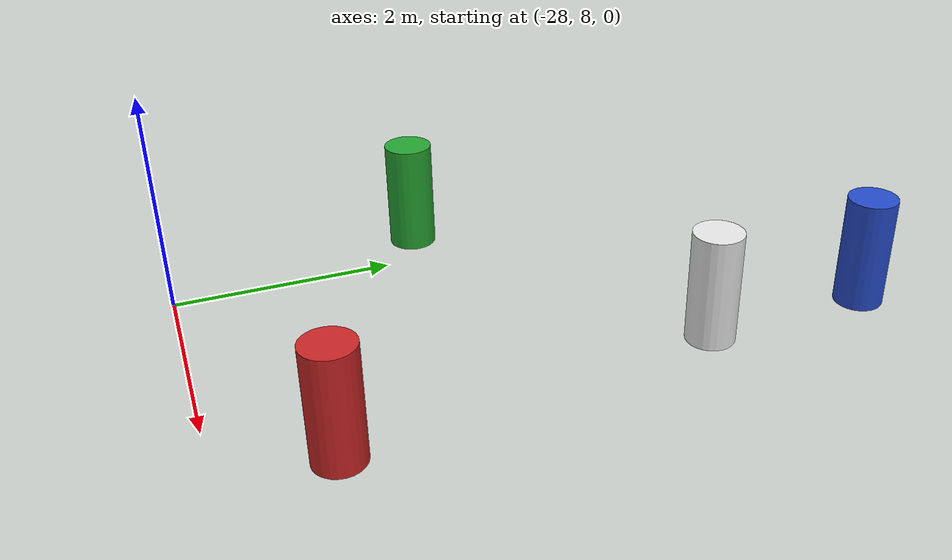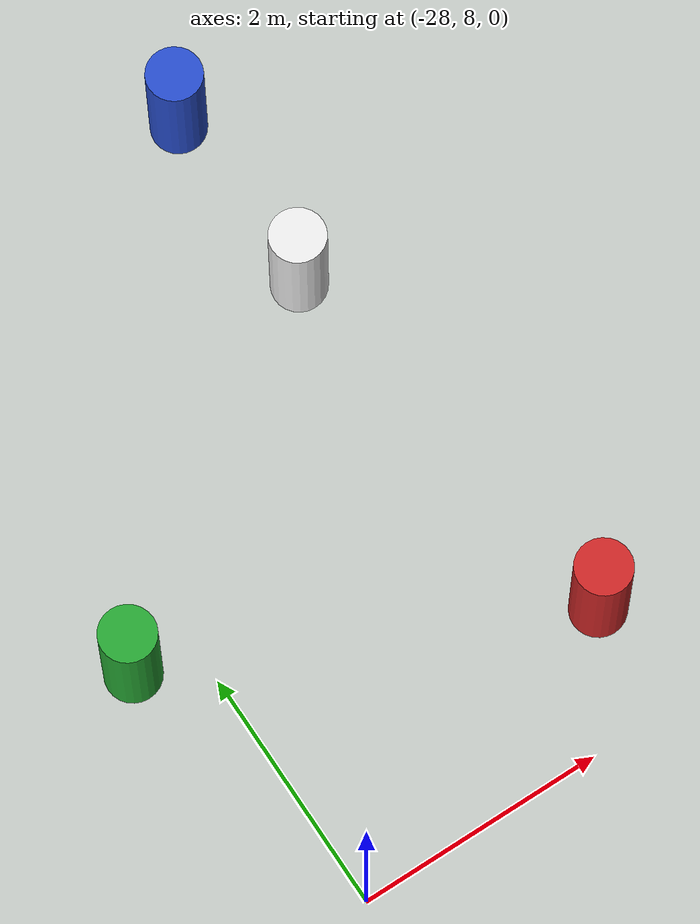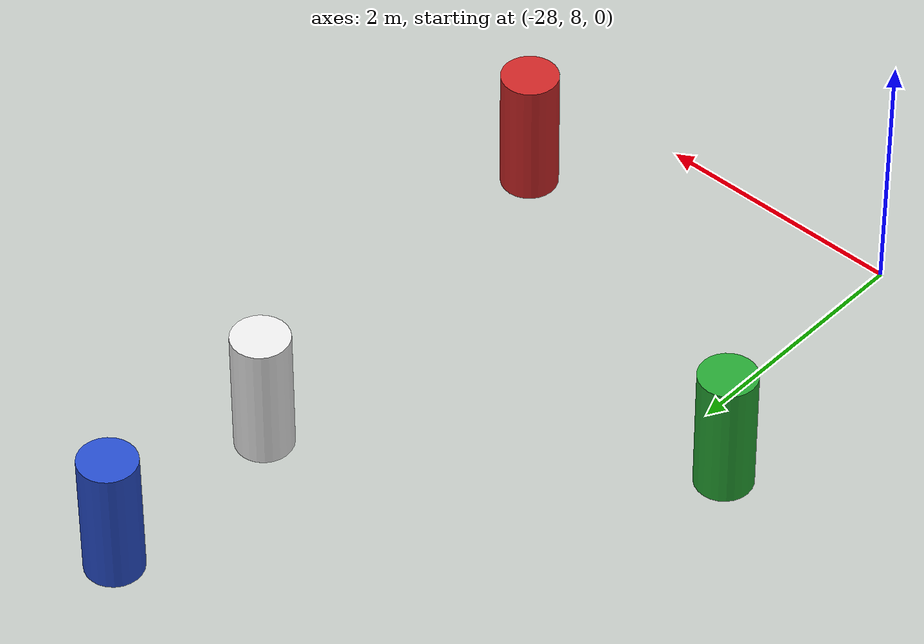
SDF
<sdf version="1.10">
 <world name="IGVC_AutoNav">
  <model name="barrel_10">
   <link name="link">
    <inertial>
     <mass>1</mass>
     <inertia>
      <ixx>0.14583299999999999</ixx>
      <ixy>0</ixy>
      <ixz>0</ixz>
      <iyy>0.14583299999999999</iyy>
      <iyz>0</iyz>
      <izz>0.125</izz>
     </inertia>
    </inertial>
    <visual name="visual">
     <geometry><cylinder><radius>0.222916</radius><length>1.0356700000000001</length></cylinder></geometry>
     <material>
      <script><name>Gazebo/Blue</name><uri>file://media/materials/scripts/gazebo.material</uri></script>
      <shader type="pixel"/>
     </material>
    </visual>
    <collision name="collision">
     <geometry><cylinder><radius>0.222916</radius><length>1.0356700000000001</length></cylinder></geometry>
     <surface>
      <friction>
       <ode><mu>1</mu><mu2>1</mu2><fdir1>0 0 0</fdir1><slip1>0</slip1><slip2>0</slip2></ode>
       <torsional>
        <coefficient>1</coefficient>
        <patch_radius>0</patch_radius>
        <surface_radius>0</surface_radius>
        <use_patch_radius>true</use_patch_radius>
        <ode><slip>0</slip></ode>
       </torsional>
      </friction>
      <bounce><restitution_coefficient>0</restitution_coefficient><threshold>1000000</threshold></bounce>
      <contact>
       <collide_without_contact>false</collide_without_contact>
       <collide_without_contact_bitmask>1</collide_without_contact_bitmask>
       <collide_bitmask>1</collide_bitmask>
       <ode>
        <soft_cfm>0</soft_cfm>
        <soft_erp>0.20000000000000001</soft_erp>
        <kp>10000000000000</kp>
        <kd>1</kd>
        <max_vel>0.01</max_vel>
        <min_depth>0</min_depth>
       </ode>
       <bullet>
        <split_impulse>true</split_impulse>
        <split_impulse_penetration_threshold>-0.01</split_impulse_penetration_threshold>
        <soft_cfm>0</soft_cfm>
        <soft_erp>0.20000000000000001</soft_erp>
        <kp>10000000000000</kp>
        <kd>1</kd>
       </bullet>
      </contact>
     </surface>
    </collision>
   </link>
   <static>false</static>
   <pose>-25.850784301757812 13.89840030670166 0.49065263426612393 8.4855848883399135e-17 -2.8281407959043097e-17 -2.4067787378642781e-17</pose>
  </model>
  <model name="barrel_14">
   <link name="link">
    <inertial>
     <mass>1</mass>
     <inertia>
      <ixx>0.14583299999999999</ixx>
      <ixy>0</ixy>
      <ixz>0</ixz>
      <iyy>0.14583299999999999</iyy>
      <iyz>0</iyz>
      <izz>0.125</izz>
     </inertia>
    </inertial>
    <visual name="visual">
     <geometry><cylinder><radius>0.222916</radius><length>1.0356700000000001</length></cylinder></geometry>
     <material>
      <script><name>Gazebo/Red</name><uri>file://media/materials/scripts/gazebo.material</uri></script>
      <shader type="pixel"/>
     </material>
    </visual>
    <collision name="collision">
     <geometry><cylinder><radius>0.222916</radius><length>1.0356700000000001</length></cylinder></geometry>
     <surface>
      <friction>
       <ode><mu>1</mu><mu2>1</mu2><fdir1>0 0 0</fdir1><slip1>0</slip1><slip2>0</slip2></ode>
       <torsional>
        <coefficient>1</coefficient>
        <patch_radius>0</patch_radius>
        <surface_radius>0</surface_radius>
        <use_patch_radius>true</use_patch_radius>
        <ode><slip>0</slip></ode>
       </torsional>
      </friction>
      <bounce><restitution_coefficient>0</restitution_coefficient><threshold>1000000</threshold></bounce>
      <contact>
       <collide_without_contact>false</collide_without_contact>
       <collide_without_contact_bitmask>1</collide_without_contact_bitmask>
       <collide_bitmask>1</collide_bitmask>
       <ode>
        <soft_cfm>0</soft_cfm>
        <soft_erp>0.20000000000000001</soft_erp>
        <kp>10000000000000</kp>
        <kd>1</kd>
        <max_vel>0.01</max_vel>
        <min_depth>0</min_depth>
       </ode>
       <bullet>
        <split_impulse>true</split_impulse>
        <split_impulse_penetration_threshold>-0.01</split_impulse_penetration_threshold>
        <soft_cfm>0</soft_cfm>
        <soft_erp>0.20000000000000001</soft_erp>
        <kp>10000000000000</kp>
        <kd>1</kd>
       </bullet>
      </contact>
     </surface>
    </collision>
   </link>
   <static>false</static>
   <pose>-25.332365036010742 8.9310302734375 0.49067056502060691 9.6709084724968985e-17 -7.6320325170465179e-17 5.422030205735455e-18</pose>
  </model>
  <model name="barrel_15">
   <link name="link">
    <inertial>
     <mass>1</mass>
     <inertia>
      <ixx>0.14583299999999999</ixx>
      <ixy>0</ixy>
      <ixz>0</ixz>
      <iyy>0.14583299999999999</iyy>
      <iyz>0</iyz>
      <izz>0.125</izz>
     </inertia>
    </inertial>
    <visual name="visual">
     <geometry><cylinder><radius>0.222916</radius><length>1.0356700000000001</length></cylinder></geometry>
     <material>
      <script><name>Gazebo/White</name><uri>file://media/materials/scripts/gazebo.material</uri></script>
      <shader type="pixel"/>
     </material>
    </visual>
    <collision name="collision">
     <geometry><cylinder><radius>0.222916</radius><length>1.0356700000000001</length></cylinder></geometry>
     <surface>
      <friction>
       <ode><mu>1</mu><mu2>1</mu2><fdir1>0 0 0</fdir1><slip1>0</slip1><slip2>0</slip2></ode>
       <torsional>
        <coefficient>1</coefficient>
        <patch_radius>0</patch_radius>
        <surface_radius>0</surface_radius>
        <use_patch_radius>true</use_patch_radius>
        <ode><slip>0</slip></ode>
       </torsional>
      </friction>
      <bounce><restitution_coefficient>0</restitution_coefficient><threshold>1000000</threshold></bounce>
      <contact>
       <collide_without_contact>false</collide_without_contact>
       <collide_without_contact_bitmask>1</collide_without_contact_bitmask>
       <collide_bitmask>1</collide_bitmask>
       <ode>
        <soft_cfm>0</soft_cfm>
        <soft_erp>0.20000000000000001</soft_erp>
        <kp>10000000000000</kp>
        <kd>1</kd>
        <max_vel>0.01</max_vel>
        <min_depth>0</min_depth>
       </ode>
       <bullet>
        <split_impulse>true</split_impulse>
        <split_impulse_penetration_threshold>-0.01</split_impulse_penetration_threshold>
        <soft_cfm>0</soft_cfm>
        <soft_erp>0.20000000000000001</soft_erp>
        <kp>10000000000000</kp>
        <kd>1</kd>
       </bullet>
      </contact>
     </surface>
    </collision>
   </link>
   <static>false</static>
   <pose>-25.783918380737305 12.307399749755859 0.49073859093797045 -8.4790698422489546e-17 -9.669244786946456e-17 -2.6998136379775421e-18</pose>
  </model>
  <model name="barrel_23">
   <link name="link">
    <inertial>
     <mass>1</mass>
     <inertia>
      <ixx>0.14583299999999999</ixx>
      <ixy>0</ixy>
      <ixz>0</ixz>
      <iyy>0.14583299999999999</iyy>
      <iyz>0</iyz>
      <izz>0.125</izz>
     </inertia>
    </inertial>
    <visual name="visual">
     <geometry><cylinder><radius>0.222916</radius><length>1.0356700000000001</length></cylinder></geometry>
     <material>
      <script><name>Gazebo/Green</name><uri>file://media/materials/scripts/gazebo.material</uri></script>
      <shader type="pixel"/>
     </material>
    </visual>
    <collision name="collision">
     <geometry><cylinder><radius>0.222916</radius><length>1.0356700000000001</length></cylinder></geometry>
     <surface>
      <friction>
       <ode><mu>1</mu><mu2>1</mu2><fdir1>0 0 0</fdir1><slip1>0</slip1><slip2>0</slip2></ode>
       <torsional>
        <coefficient>1</coefficient>
        <patch_radius>0</patch_radius>
        <surface_radius>0</surface_radius>
        <use_patch_radius>true</use_patch_radius>
        <ode><slip>0</slip></ode>
       </torsional>
      </friction>
      <bounce><restitution_coefficient>0</restitution_coefficient><threshold>1000000</threshold></bounce>
      <contact>
       <collide_without_contact>false</collide_without_contact>
       <collide_without_contact_bitmask>1</collide_without_contact_bitmask>
       <collide_bitmask>1</collide_bitmask>
       <ode>
        <soft_cfm>0</soft_cfm>
        <soft_erp>0.20000000000000001</soft_erp>
        <kp>10000000000000</kp>
        <kd>1</kd>
        <max_vel>0.01</max_vel>
        <min_depth>0</min_depth>
       </ode>
       <bullet>
        <split_impulse>true</split_impulse>
        <split_impulse_penetration_threshold>-0.01</split_impulse_penetration_threshold>
        <soft_cfm>0</soft_cfm>
        <soft_erp>0.20000000000000001</soft_erp>
        <kp>10000000000000</kp>
        <kd>1</kd>
       </bullet>
      </contact>
     </surface>
    </collision>
   </link>
   <static>false</static>
   <pose>-28.489200592041016 10.397676467895508 0.48974604376635594 -1.4178488771199561e-16 -8.5027954482303544e-17 -2.0011433239803875e-17</pose>
  </model>
 </world>
</sdf>
